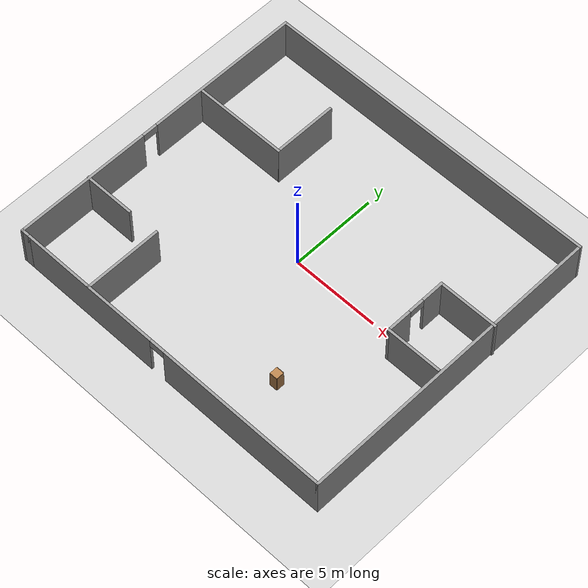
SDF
<sdf version="1.7">
 <world name="default">
  <plugin name="gazebo_ros_state" filename="libgazebo_ros_state.so"><update_rate>1.0</update_rate></plugin>
  <plugin name="gazebo_ros_properties" filename="libgazebo_ros_properties.so"/>
  <light name="sun" type="directional">
   <pose>0 0 10 0 -0 0</pose>
   <diffuse>0.8 0.8 0.8 1</diffuse>
   <specular>0.2 0.2 0.2 1</specular>
   <attenuation>
    <range>1000</range>
    <constant>0.9</constant>
    <linear>0.01</linear>
    <quadratic>0.001</quadratic>
   </attenuation>
   <direction>-0.5 0.1 -0.9</direction>
   <spot><inner_angle>0</inner_angle><outer_angle>0</outer_angle><falloff>0</falloff></spot>
  </light>
  <model name="ground_plane">
   <static>1</static>
   <link name="link">
    <collision name="collision">
     <geometry><plane><normal>0 0 1</normal><size>100 100</size></plane></geometry>
     <surface>
      <contact><collide_bitmask>65535</collide_bitmask></contact>
      <friction><ode><mu>100</mu><mu2>50</mu2></ode></friction>
     </surface>
    </collision>
    <visual name="visual">
     <cast_shadows>0</cast_shadows>
     <geometry><plane><normal>0 0 1</normal><size>100 100</size></plane></geometry>
     <material>
      <script><uri>file://media/materials/scripts/gazebo.material</uri><name>Gazebo/Grey</name></script>
     </material>
    </visual>
   </link>
  </model>
  <gravity>0 0 -9.8</gravity>
  <magnetic_field>6e-06 2.3e-05 -4.2e-05</magnetic_field>
  <atmosphere type="adiabatic"/>
  <physics type="ode">
   <max_step_size>0.001</max_step_size>
   <real_time_factor>1</real_time_factor>
   <real_time_update_rate>1000</real_time_update_rate>
  </physics>
  <scene><ambient>0.4 0.4 0.4 1</ambient><background>0.7 0.7 0.7 1</background><shadows>1</shadows></scene>
  <spherical_coordinates>
   <surface_model>EARTH_WGS84</surface_model>
   <latitude_deg>0</latitude_deg>
   <longitude_deg>0</longitude_deg>
   <elevation>0</elevation>
   <heading_deg>0</heading_deg>
  </spherical_coordinates>
  <model name="room_test_better">
   <pose>0.30135 -0.10454 0 0 -0 0</pose>
   <link name="Wall_10">
    <collision name="Wall_10_Collision">
     <geometry><box><size>5.5 0.15 2.5</size></box></geometry>
     <pose>0 0 1.25 0 -0 0</pose>
    </collision>
    <visual name="Wall_10_Visual">
     <pose>0 0 1.25 0 -0 0</pose>
     <geometry><box><size>5.5 0.15 2.5</size></box></geometry>
     <material>
      <script><uri>file://media/materials/scripts/gazebo.material</uri><name>Gazebo/Grey</name></script>
      <ambient>1 1 1 1</ambient>
     </material>
     <meta><layer>0</layer></meta>
    </visual>
    <pose>-7.09502 2.95372 0 0 -0 0</pose>
   </link>
   <link name="Wall_11">
    <collision name="Wall_11_Collision">
     <geometry><box><size>3.75 0.15 2.5</size></box></geometry>
     <pose>0 0 1.25 0 -0 0</pose>
    </collision>
    <visual name="Wall_11_Visual">
     <pose>0 0 1.25 0 -0 0</pose>
     <geometry><box><size>3.75 0.15 2.5</size></box></geometry>
     <material>
      <script><uri>file://media/materials/scripts/gazebo.material</uri><name>Gazebo/Grey</name></script>
      <ambient>1 1 1 1</ambient>
     </material>
     <meta><layer>0</layer></meta>
    </visual>
    <pose>-4.42002 4.75372 0 0 -0 1.5708</pose>
   </link>
   <link name="Wall_13">
    <collision name="Wall_13_Collision">
     <geometry><box><size>3.5 0.15 2.5</size></box></geometry>
     <pose>0 0 1.25 0 -0 0</pose>
    </collision>
    <visual name="Wall_13_Visual">
     <pose>0 0 1.25 0 -0 0</pose>
     <geometry><box><size>3.5 0.15 2.5</size></box></geometry>
     <material>
      <script><uri>file://media/materials/scripts/gazebo.material</uri><name>Gazebo/Grey</name></script>
      <ambient>1 1 1 1</ambient>
     </material>
     <meta><layer>0</layer></meta>
    </visual>
    <pose>8.17593 2.7919 0 0 -0 3.14159</pose>
   </link>
   <link name="Wall_14">
    <pose>6.50093 0.991899 0 0 -0 -1.5708</pose>
    <visual name="Wall_14_Visual_0">
     <pose>-1.1927 0 1.25 0 -0 0</pose>
     <geometry><box><size>1.36459 0.15 2.5</size></box></geometry>
     <material>
      <script><uri>file://media/materials/scripts/gazebo.material</uri><name>Gazebo/Grey</name></script>
      <ambient>1 1 1 1</ambient>
     </material>
     <meta><layer>0</layer></meta>
    </visual>
    <collision name="Wall_14_Collision_0">
     <geometry><box><size>1.36459 0.15 2.5</size></box></geometry>
     <pose>-1.1927 0 1.25 0 -0 0</pose>
    </collision>
    <visual name="Wall_14_Visual_1">
     <pose>1.1323 0 1.25 0 -0 0</pose>
     <geometry><box><size>1.48541 0.15 2.5</size></box></geometry>
     <material>
      <script><uri>file://media/materials/scripts/gazebo.material</uri><name>Gazebo/Grey</name></script>
      <ambient>1 1 1 1</ambient>
     </material>
     <meta><layer>0</layer></meta>
    </visual>
    <collision name="Wall_14_Collision_1">
     <geometry><box><size>1.48541 0.15 2.5</size></box></geometry>
     <pose>1.1323 0 1.25 0 -0 0</pose>
    </collision>
    <visual name="Wall_14_Visual_2">
     <pose>-0.06041 0 2.25 0 -0 0</pose>
     <geometry><box><size>0.9 0.15 0.5</size></box></geometry>
     <material>
      <script><uri>file://media/materials/scripts/gazebo.material</uri><name>Gazebo/Grey</name></script>
      <ambient>1 1 1 1</ambient>
     </material>
     <meta><layer>0</layer></meta>
    </visual>
    <collision name="Wall_14_Collision_2">
     <geometry><box><size>0.9 0.15 0.5</size></box></geometry>
     <pose>-0.06041 0 2.25 0 -0 0</pose>
    </collision>
   </link>
   <link name="Wall_15">
    <collision name="Wall_15_Collision">
     <geometry><box><size>3.25 0.15 2.5</size></box></geometry>
     <pose>0 0 1.25 0 -0 0</pose>
    </collision>
    <visual name="Wall_15_Visual">
     <pose>0 0 1.25 0 -0 0</pose>
     <geometry><box><size>3.25 0.15 2.5</size></box></geometry>
     <material>
      <script><uri>file://media/materials/scripts/gazebo.material</uri><name>Gazebo/Grey</name></script>
      <ambient>1 1 1 1</ambient>
     </material>
     <meta><layer>0</layer></meta>
    </visual>
    <pose>8.05093 -0.808101 0 0 -0 0</pose>
   </link>
   <link name="Wall_17">
    <collision name="Wall_17_Collision">
     <geometry><box><size>4.5 0.15 2.5</size></box></geometry>
     <pose>0 0 1.25 0 -0 0</pose>
    </collision>
    <visual name="Wall_17_Visual">
     <pose>0 0 1.25 0 -0 0</pose>
     <geometry><box><size>4.5 0.15 2.5</size></box></geometry>
     <material>
      <script><uri>file://media/materials/scripts/gazebo.material</uri><name>Gazebo/Grey</name></script>
      <ambient>1 1 1 1</ambient>
     </material>
     <meta><layer>0</layer></meta>
    </visual>
    <pose>-5.19854 -6.72476 0 0 -0 1.5708</pose>
   </link>
   <link name="Wall_20">
    <collision name="Wall_20_Collision">
     <geometry><box><size>3 0.15 2.5</size></box></geometry>
     <pose>0 0 1.25 0 -0 0</pose>
    </collision>
    <visual name="Wall_20_Visual">
     <pose>0 0 1.25 0 -0 0</pose>
     <geometry><box><size>3 0.15 2.5</size></box></geometry>
     <material>
      <script><uri>file://media/materials/scripts/gazebo.material</uri><name>Gazebo/Grey</name></script>
      <ambient>1 1 1 1</ambient>
     </material>
     <meta><layer>0</layer></meta>
    </visual>
    <pose>-8.42593 -4.61147 0 0 -0 0</pose>
   </link>
   <link name="Wall_4">
    <pose>0.23116 -8.925 0 0 -0 0</pose>
    <visual name="Wall_4_Visual_0">
     <pose>-5.42615 0 1.25 0 -0 0</pose>
     <geometry><box><size>8.39769 0.15 2.5</size></box></geometry>
     <material>
      <script><uri>file://media/materials/scripts/gazebo.material</uri><name>Gazebo/Grey</name></script>
      <ambient>1 1 1 1</ambient>
     </material>
     <meta><layer>0</layer></meta>
    </visual>
    <collision name="Wall_4_Collision_0">
     <geometry><box><size>8.39769 0.15 2.5</size></box></geometry>
     <pose>-5.42615 0 1.25 0 -0 0</pose>
    </collision>
    <visual name="Wall_4_Visual_1">
     <pose>4.64884 0 1.25 0 -0 0</pose>
     <geometry><box><size>9.95231 0.15 2.5</size></box></geometry>
     <material>
      <script><uri>file://media/materials/scripts/gazebo.material</uri><name>Gazebo/Grey</name></script>
      <ambient>1 1 1 1</ambient>
     </material>
     <meta><layer>0</layer></meta>
    </visual>
    <collision name="Wall_4_Collision_1">
     <geometry><box><size>9.95231 0.15 2.5</size></box></geometry>
     <pose>4.64884 0 1.25 0 -0 0</pose>
    </collision>
    <visual name="Wall_4_Visual_2">
     <pose>-0.77731 0 2.25 0 -0 0</pose>
     <geometry><box><size>0.9 0.15 0.5</size></box></geometry>
     <material>
      <script><uri>file://media/materials/scripts/gazebo.material</uri><name>Gazebo/Grey</name></script>
      <ambient>1 1 1 1</ambient>
     </material>
     <meta><layer>0</layer></meta>
    </visual>
    <collision name="Wall_4_Collision_2">
     <geometry><box><size>0.9 0.15 0.5</size></box></geometry>
     <pose>-0.77731 0 2.25 0 -0 0</pose>
    </collision>
   </link>
   <link name="Wall_5">
    <collision name="Wall_5_Collision">
     <geometry><box><size>18 0.15 2.5</size></box></geometry>
     <pose>0 0 1.25 0 -0 0</pose>
    </collision>
    <visual name="Wall_5_Visual">
     <pose>0 0 1.25 0 -0 0</pose>
     <geometry><box><size>18 0.15 2.5</size></box></geometry>
     <material>
      <script><uri>file://media/materials/scripts/gazebo.material</uri><name>Gazebo/Grey</name></script>
      <ambient>1 1 1 1</ambient>
     </material>
     <meta><layer>0</layer></meta>
    </visual>
    <pose>9.78116 0 0 0 -0 1.5708</pose>
   </link>
   <link name="Wall_6">
    <collision name="Wall_6_Collision">
     <geometry><box><size>19.75 0.15 2.5</size></box></geometry>
     <pose>0 0 1.25 0 -0 0</pose>
    </collision>
    <visual name="Wall_6_Visual">
     <pose>0 0 1.25 0 -0 0</pose>
     <geometry><box><size>19.75 0.15 2.5</size></box></geometry>
     <material>
      <script><uri>file://media/materials/scripts/gazebo.material</uri><name>Gazebo/Grey</name></script>
      <ambient>1 1 1 1</ambient>
     </material>
     <meta><layer>0</layer></meta>
    </visual>
    <pose>-0.01884 8.925 0 0 -0 3.14159</pose>
   </link>
   <link name="Wall_7">
    <pose>-9.81884 0 0 0 -0 -1.5708</pose>
    <visual name="Wall_7_Visual_0">
     <pose>-4.44204 0 1.25 0 -0 0</pose>
     <geometry><box><size>9.11591 0.15 2.5</size></box></geometry>
     <material>
      <script><uri>file://media/materials/scripts/gazebo.material</uri><name>Gazebo/Grey</name></script>
      <ambient>1 1 1 1</ambient>
     </material>
     <meta><layer>0</layer></meta>
    </visual>
    <collision name="Wall_7_Collision_0">
     <geometry><box><size>9.11591 0.15 2.5</size></box></geometry>
     <pose>-4.44204 0 1.25 0 -0 0</pose>
    </collision>
    <visual name="Wall_7_Visual_1">
     <pose>5.00796 0 1.25 0 -0 0</pose>
     <geometry><box><size>7.98409 0.15 2.5</size></box></geometry>
     <material>
      <script><uri>file://media/materials/scripts/gazebo.material</uri><name>Gazebo/Grey</name></script>
      <ambient>1 1 1 1</ambient>
     </material>
     <meta><layer>0</layer></meta>
    </visual>
    <collision name="Wall_7_Collision_1">
     <geometry><box><size>7.98409 0.15 2.5</size></box></geometry>
     <pose>5.00796 0 1.25 0 -0 0</pose>
    </collision>
    <visual name="Wall_7_Visual_2">
     <pose>0.565914 0 2.25 0 -0 0</pose>
     <geometry><box><size>0.9 0.15 0.5</size></box></geometry>
     <material>
      <script><uri>file://media/materials/scripts/gazebo.material</uri><name>Gazebo/Grey</name></script>
      <ambient>1 1 1 1</ambient>
     </material>
     <meta><layer>0</layer></meta>
    </visual>
    <collision name="Wall_7_Collision_2">
     <geometry><box><size>0.9 0.15 0.5</size></box></geometry>
     <pose>0.565914 0 2.25 0 -0 0</pose>
    </collision>
   </link>
   <link name="Wall_8">
    <collision name="Wall_8_Collision">
     <geometry><box><size>0.65 0.15 2.5</size></box></geometry>
     <pose>0 0 1.25 0 -0 0</pose>
    </collision>
    <visual name="Wall_8_Visual">
     <pose>0 0 1.25 0 -0 0</pose>
     <geometry><box><size>0.65 0.15 2.5</size></box></geometry>
     <material>
      <script><uri>file://media/materials/scripts/gazebo.material</uri><name>Gazebo/Grey</name></script>
      <ambient>1 1 1 1</ambient>
     </material>
     <meta><layer>0</layer></meta>
    </visual>
    <pose>-9.56884 -8.925 0 0 -0 0</pose>
   </link>
   <static>1</static>
  </model>
  <model name="cabinet">
   <static>1</static>
   <link name="cabinet_bottom_plate">
    <inertial>
     <pose>0 0 -1 0 -0 0</pose>
     <inertia><ixx>2.05</ixx><ixy>0</ixy><ixz>0</ixz><iyy>2.05</iyy><iyz>0</iyz><izz>2.05</izz></inertia>
     <mass>25</mass>
    </inertial>
    <collision name="cabinet_bottom_plate_geom">
     <pose>0 0 0.01 0 -0 0</pose>
     <geometry><box><size>0.45 0.45 0.02</size></box></geometry>
    </collision>
    <visual name="cabinet_bottom_plate_geom_visual">
     <pose>0 0 0.01 0 -0 0</pose>
     <geometry><box><size>0.45 0.45 0.02</size></box></geometry>
     <material>
      <script><uri>file://media/materials/scripts/gazebo.material</uri><name>Gazebo/Wood</name></script>
     </material>
    </visual>
    <collision name="cabinet_bottom_plate_geom_cabinet_back_plate">
     <pose>0.235 0 0.51 0 -0 0</pose>
     <geometry><box><size>0.02 0.45 1.02</size></box></geometry>
    </collision>
    <visual name="cabinet_bottom_plate_geom_cabinet_back_plate_visual">
     <pose>0.235 0 0.51 0 -0 0</pose>
     <geometry><box><size>0.02 0.45 1.02</size></box></geometry>
     <material>
      <script><uri>file://media/materials/scripts/gazebo.material</uri><name>Gazebo/Wood</name></script>
     </material>
    </visual>
    <collision name="cabinet_bottom_plate_geom_cabinet_left_plate">
     <pose>0 0.235 0.51 0 -0 0</pose>
     <geometry><box><size>0.45 0.02 1.02</size></box></geometry>
    </collision>
    <visual name="cabinet_bottom_plate_geom_cabinet_left_plate_visual">
     <pose>0 0.235 0.51 0 -0 0</pose>
     <geometry><box><size>0.45 0.02 1.02</size></box></geometry>
     <material>
      <script><uri>file://media/materials/scripts/gazebo.material</uri><name>Gazebo/Wood</name></script>
     </material>
    </visual>
    <collision name="cabinet_bottom_plate_geom_cabinet_middle_plate">
     <pose>0 0 0.51 0 -0 0</pose>
     <geometry><box><size>0.45 0.45 0.02</size></box></geometry>
    </collision>
    <visual name="cabinet_bottom_plate_geom_cabinet_middle_plate_visual">
     <pose>0 0 0.51 0 -0 0</pose>
     <geometry><box><size>0.45 0.45 0.02</size></box></geometry>
     <material>
      <script><uri>file://media/materials/scripts/gazebo.material</uri><name>Gazebo/Wood</name></script>
     </material>
    </visual>
    <collision name="cabinet_bottom_plate_geom_cabinet_right_plate">
     <pose>0 -0.235 0.51 0 -0 0</pose>
     <geometry><box><size>0.45 0.02 1.02</size></box></geometry>
    </collision>
    <visual name="cabinet_bottom_plate_geom_cabinet_right_plate_visual">
     <pose>0 -0.235 0.51 0 -0 0</pose>
     <geometry><box><size>0.45 0.02 1.02</size></box></geometry>
     <material>
      <script><uri>file://media/materials/scripts/gazebo.material</uri><name>Gazebo/Wood</name></script>
     </material>
    </visual>
    <collision name="cabinet_bottom_plate_geom_cabinet_top_plate">
     <pose>0 0 1.01 0 -0 0</pose>
     <geometry><box><size>0.45 0.45 0.02</size></box></geometry>
    </collision>
    <visual name="cabinet_bottom_plate_geom_cabinet_top_plate_visual">
     <pose>0 0 1.01 0 -0 0</pose>
     <geometry><box><size>0.45 0.45 0.02</size></box></geometry>
     <material>
      <script><uri>file://media/materials/scripts/gazebo.material</uri><name>Gazebo/Wood</name></script>
     </material>
    </visual>
   </link>
   <pose>-3.17382 -8.73264 0 0 -0 0</pose>
  </model>
  <model name="cabinet_0">
   <static>1</static>
   <link name="cabinet_bottom_plate">
    <inertial>
     <pose>0 0 -1 0 -0 0</pose>
     <inertia><ixx>2.05</ixx><ixy>0</ixy><ixz>0</ixz><iyy>2.05</iyy><iyz>0</iyz><izz>2.05</izz></inertia>
     <mass>25</mass>
    </inertial>
    <collision name="cabinet_bottom_plate_geom">
     <pose>0 0 0.01 0 -0 0</pose>
     <geometry><box><size>0.45 0.45 0.02</size></box></geometry>
    </collision>
    <visual name="cabinet_bottom_plate_geom_visual">
     <pose>0 0 0.01 0 -0 0</pose>
     <geometry><box><size>0.45 0.45 0.02</size></box></geometry>
     <material>
      <script><uri>file://media/materials/scripts/gazebo.material</uri><name>Gazebo/Wood</name></script>
     </material>
    </visual>
    <collision name="cabinet_bottom_plate_geom_cabinet_back_plate">
     <pose>0.235 0 0.51 0 -0 0</pose>
     <geometry><box><size>0.02 0.45 1.02</size></box></geometry>
    </collision>
    <visual name="cabinet_bottom_plate_geom_cabinet_back_plate_visual">
     <pose>0.235 0 0.51 0 -0 0</pose>
     <geometry><box><size>0.02 0.45 1.02</size></box></geometry>
     <material>
      <script><uri>file://media/materials/scripts/gazebo.material</uri><name>Gazebo/Wood</name></script>
     </material>
    </visual>
    <collision name="cabinet_bottom_plate_geom_cabinet_left_plate">
     <pose>0 0.235 0.51 0 -0 0</pose>
     <geometry><box><size>0.45 0.02 1.02</size></box></geometry>
    </collision>
    <visual name="cabinet_bottom_plate_geom_cabinet_left_plate_visual">
     <pose>0 0.235 0.51 0 -0 0</pose>
     <geometry><box><size>0.45 0.02 1.02</size></box></geometry>
     <material>
      <script><uri>file://media/materials/scripts/gazebo.material</uri><name>Gazebo/Wood</name></script>
     </material>
    </visual>
    <collision name="cabinet_bottom_plate_geom_cabinet_middle_plate">
     <pose>0 0 0.51 0 -0 0</pose>
     <geometry><box><size>0.45 0.45 0.02</size></box></geometry>
    </collision>
    <visual name="cabinet_bottom_plate_geom_cabinet_middle_plate_visual">
     <pose>0 0 0.51 0 -0 0</pose>
     <geometry><box><size>0.45 0.45 0.02</size></box></geometry>
     <material>
      <script><uri>file://media/materials/scripts/gazebo.material</uri><name>Gazebo/Wood</name></script>
     </material>
    </visual>
    <collision name="cabinet_bottom_plate_geom_cabinet_right_plate">
     <pose>0 -0.235 0.51 0 -0 0</pose>
     <geometry><box><size>0.45 0.02 1.02</size></box></geometry>
    </collision>
    <visual name="cabinet_bottom_plate_geom_cabinet_right_plate_visual">
     <pose>0 -0.235 0.51 0 -0 0</pose>
     <geometry><box><size>0.45 0.02 1.02</size></box></geometry>
     <material>
      <script><uri>file://media/materials/scripts/gazebo.material</uri><name>Gazebo/Wood</name></script>
     </material>
    </visual>
    <collision name="cabinet_bottom_plate_geom_cabinet_top_plate">
     <pose>0 0 1.01 0 -0 0</pose>
     <geometry><box><size>0.45 0.45 0.02</size></box></geometry>
    </collision>
    <visual name="cabinet_bottom_plate_geom_cabinet_top_plate_visual">
     <pose>0 0 1.01 0 -0 0</pose>
     <geometry><box><size>0.45 0.45 0.02</size></box></geometry>
     <material>
      <script><uri>file://media/materials/scripts/gazebo.material</uri><name>Gazebo/Wood</name></script>
     </material>
    </visual>
   </link>
   <pose>4.09157 -5.59236 0 0 -0 0</pose>
  </model>
 </world>
</sdf>
